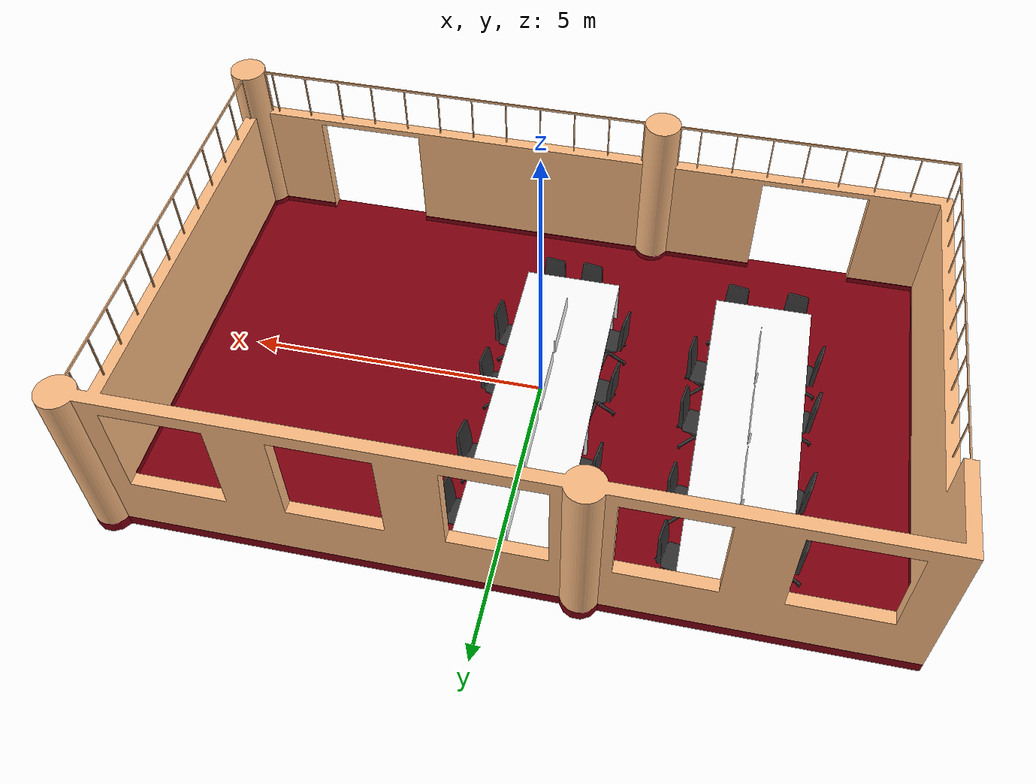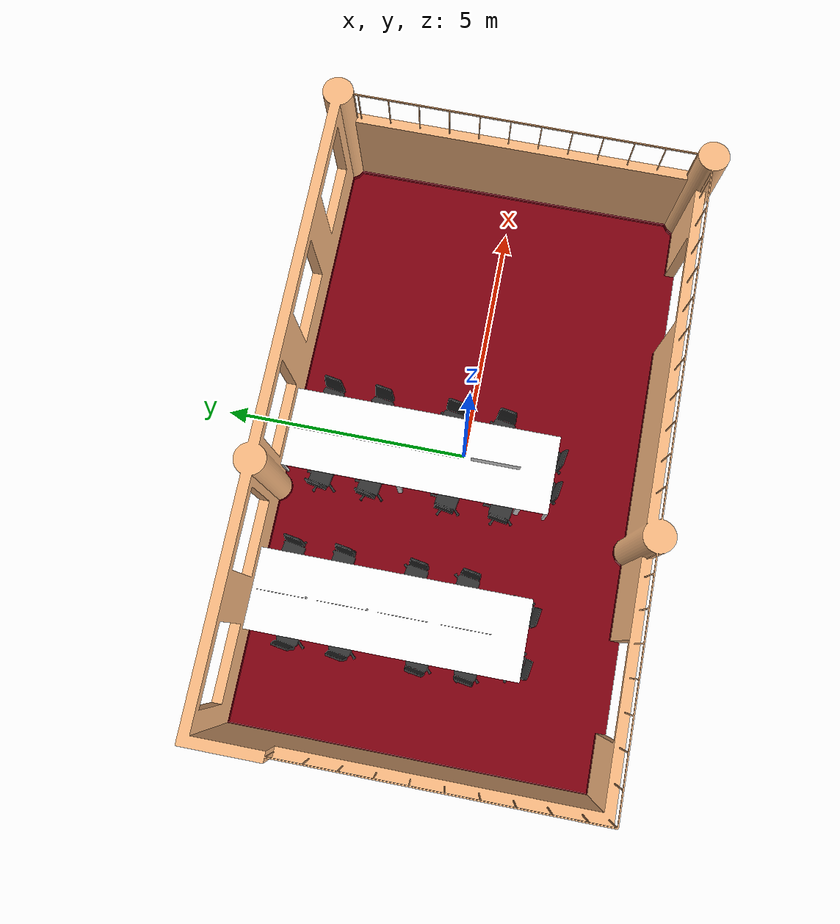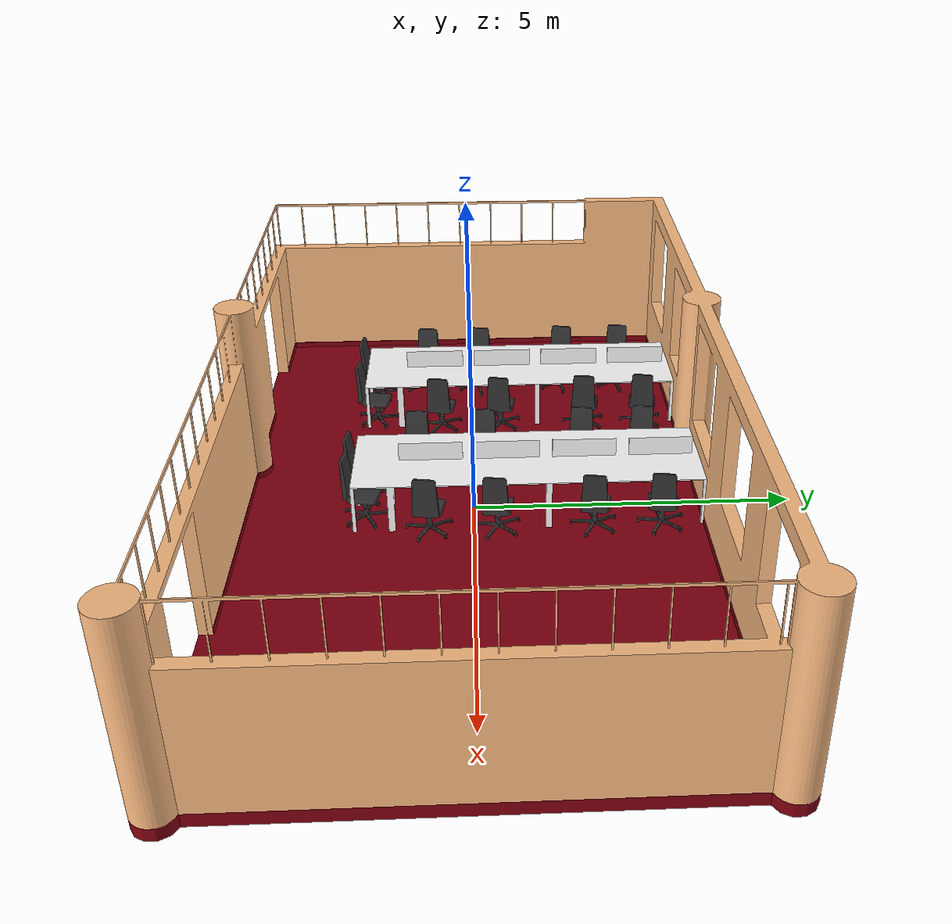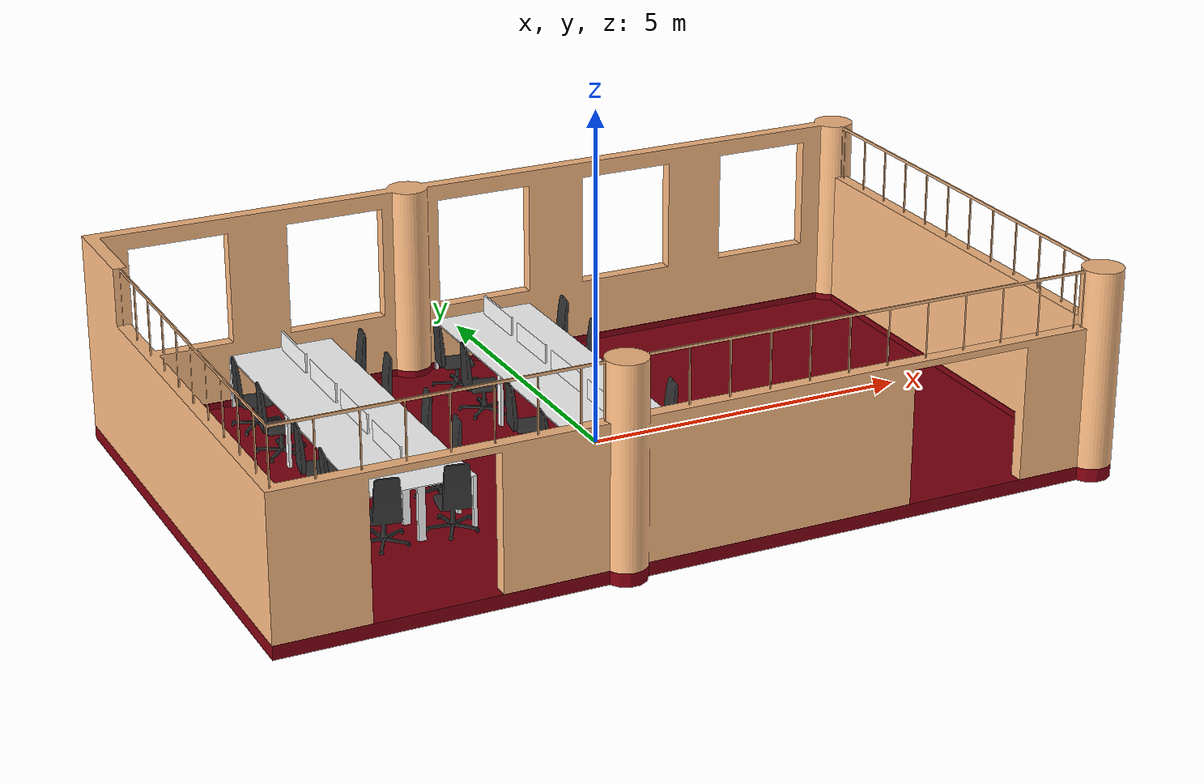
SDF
<sdf version="1.9">
 <world name="marlab">
  <gravity>0 0 -9.8</gravity>
  <magnetic_field>6e-06 2.3e-05 -4.2e-05</magnetic_field>
  <atmosphere type="adiabatic"/>
  <physics type="ode">
   <max_step_size>0.001</max_step_size>
   <real_time_factor>1</real_time_factor>
   <real_time_update_rate>1000</real_time_update_rate>
  </physics>
  <scene><ambient>0.4 0.4 0.4 1</ambient><background>0.7 0.7 0.7 1</background><shadows>true</shadows></scene>
  <light name="sun_light" type="directional">
   <pose>0 0 10 0 0 0</pose>
   <direction>-0.5 0.5 -1</direction>
   <diffuse>1 1 1 1</diffuse>
   <specular>0.2 0.2 0.2 1</specular>
   <attenuation>
    <range>1000</range>
    <constant>0.9</constant>
    <linear>0.01</linear>
    <quadratic>0.001</quadratic>
   </attenuation>
   <cast_shadow>true</cast_shadow>
  </light>
  <include><uri>model://marlab</uri><name>marlab</name></include>
 </world>
</sdf>

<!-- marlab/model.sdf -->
<sdf version="1.7">
  <model name="marlab">
    <!-- make the model dynamic -->
    <static>true</static>

    <link name="world_link">
      <!-- this dummy link holds nothing -->
      <pose>0 0 0 0 0 0</pose>
      <inertial>
        <mass>0.001</mass>
        <inertia>
          <ixx>1e-6</ixx><iyy>1e-6</iyy><izz>1e-6</izz>
        </inertia>
      </inertial>
    </link>

    <link name="floor_link">
      <pose>-6.09 -3.55 0 0 0 0</pose>
      <visual name="floor_visual">
        <geometry>
          <mesh>
            <uri>model://marlab/meshes/floor.stl</uri>
          </mesh>
        </geometry>
        <material>
          <ambient>0.5 0.0 0.06 1</ambient>
          <diffuse>0.5 0.0 0.06 1</diffuse>
        </material>
      </visual>
      <collision name="floor_collision">
        <geometry>
          <mesh><uri>model://marlab/meshes/floor.stl</uri></mesh>
        </geometry>
      </collision>
      <inertial>
        <mass>1.0</mass>
        <inertia>
          <ixx>0.1</ixx><iyy>0.1</iyy><izz>0.1</izz>
        </inertia>
      </inertial>
    </link>

    <link name="walls_link">
      <pose>-6.09 -3.55 0 0 0 0</pose>
      <visual name="walls_visual">
        <geometry>
          <mesh><uri>model://marlab/meshes/walls.stl</uri></mesh>
        </geometry>
        <material>
          <ambient>0.98 0.73 0.51 1</ambient>
          <diffuse>0.98 0.73 0.51 1</diffuse>
        </material>
      </visual>
      <collision name="walls_collision">
        <geometry><mesh><uri>model://marlab/meshes/walls.stl</uri></mesh></geometry>
      </collision>
      <inertial>
        <mass>2.0</mass>
        <inertia>
          <ixx>0.2</ixx><iyy>0.2</iyy><izz>0.2</izz>
        </inertia>
      </inertial>
    </link>

    <link name="tables_link">
      <pose>-6.09 -3.55 0 0 0 0</pose>
      <visual name="tables_visual">
        <geometry>
          <mesh><uri>model://marlab/meshes/tables.stl</uri></mesh>
        </geometry>
        <material>
          <ambient>1.0 1.0 1.0 1</ambient>
          <diffuse>1.0 1.0 1.0 1</diffuse>
        </material>
      </visual>
      <collision name="tables_collision">
        <geometry><mesh><uri>model://marlab/meshes/tables.stl</uri></mesh></geometry>
      </collision>
      <inertial>
        <mass>2.0</mass>
        <inertia>
          <ixx>0.2</ixx><iyy>0.2</iyy><izz>0.2</izz>
        </inertia>
      </inertial>
    </link>

    <link name="chairs_link">
      <pose>0 0 0 0 0 0</pose>
      <inertial>
        <mass>0.1</mass>
        <inertia>
          <ixx>1e-3</ixx><iyy>1e-3</iyy><izz>1e-3</izz>
        </inertia>
      </inertial>

      <!-- Row at x = -2.8 -->
      <visual name="chair_visual_1">
        <pose>-2.8  -2.20  0 0 0 0</pose>
        <geometry><mesh><uri>model://marlab/meshes/chair.stl</uri></mesh></geometry>
        <material><ambient>0.2 0.2 0.2 1</ambient> <diffuse>0.2 0.2 0.2 1</diffuse> </material>
      </visual>
      <collision name="chair_collision_1">
        <pose>-2.8  -2.20  0 0 0 0</pose>
        <geometry><mesh><uri>model://marlab/meshes/chair.stl</uri></mesh></geometry>
      </collision>

      <visual name="chair_visual_2">
        <pose>-2.8  -1.16  0 0 0 0</pose>
        <geometry><mesh><uri>model://marlab/meshes/chair.stl</uri></mesh></geometry>
        <material><ambient>0.2 0.2 0.2 1</ambient> <diffuse>0.2 0.2 0.2 1</diffuse> </material>
      </visual>
      <collision name="chair_collision_2">
        <pose>-2.8  -1.16  0 0 0 0</pose>
        <geometry><mesh><uri>model://marlab/meshes/chair.stl</uri></mesh></geometry>
      </collision>

      <visual name="chair_visual_3">
        <pose>-2.8  -3.69  0 0 0 0</pose>
        <geometry><mesh><uri>model://marlab/meshes/chair.stl</uri></mesh></geometry>
        <material><ambient>0.2 0.2 0.2 1</ambient> <diffuse>0.2 0.2 0.2 1</diffuse> </material>
      </visual>
      <collision name="chair_collision_3">
        <pose>-2.8  -3.69  0 0 0 0</pose>
        <geometry><mesh><uri>model://marlab/meshes/chair.stl</uri></mesh></geometry>
      </collision>

      <visual name="chair_visual_4">
        <pose>-2.8  -4.74  0 0 0 0</pose>
        <geometry><mesh><uri>model://marlab/meshes/chair.stl</uri></mesh></geometry>
        <material><ambient>0.2 0.2 0.2 1</ambient> <diffuse>0.2 0.2 0.2 1</diffuse> </material>
      </visual>
      <collision name="chair_collision_4">
        <pose>-2.8  -4.74  0 0 0 0</pose>
        <geometry><mesh><uri>model://marlab/meshes/chair.stl</uri></mesh></geometry>
      </collision>

      <!-- Row at x = -6.06 -->
      <visual name="chair_visual_5">
        <pose>-6.06 -1.06  0 0 0 0</pose>
        <geometry><mesh><uri>model://marlab/meshes/chair.stl</uri></mesh></geometry>
        <material><ambient>0.2 0.2 0.2 1</ambient> <diffuse>0.2 0.2 0.2 1</diffuse> </material>
      </visual>
      <collision name="chair_collision_5">
        <pose>-6.06 -1.06  0 0 0 0</pose>
        <geometry><mesh><uri>model://marlab/meshes/chair.stl</uri></mesh></geometry>
      </collision>

      <visual name="chair_visual_6">
        <pose>-6.06 -2.08  0 0 0 0</pose>
        <geometry><mesh><uri>model://marlab/meshes/chair.stl</uri></mesh></geometry>
        <material><ambient>0.2 0.2 0.2 1</ambient> <diffuse>0.2 0.2 0.2 1</diffuse> </material>
      </visual>
      <collision name="chair_collision_6">
        <pose>-6.06 -2.08  0 0 0 0</pose>
        <geometry><mesh><uri>model://marlab/meshes/chair.stl</uri></mesh></geometry>
      </collision>

      <visual name="chair_visual_7">
        <pose>-6.06 -3.56  0 0 0 0</pose>
        <geometry><mesh><uri>model://marlab/meshes/chair.stl</uri></mesh></geometry>
        <material><ambient>0.2 0.2 0.2 1</ambient> <diffuse>0.2 0.2 0.2 1</diffuse> </material>
      </visual>
      <collision name="chair_collision_7">
        <pose>-6.06 -3.56  0 0 0 0</pose>
        <geometry><mesh><uri>model://marlab/meshes/chair.stl</uri></mesh></geometry>
      </collision>

      <visual name="chair_visual_8">
        <pose>-6.06 -4.60  0 0 0 0</pose>
        <geometry><mesh><uri>model://marlab/meshes/chair.stl</uri></mesh></geometry>
        <material><ambient>0.2 0.2 0.2 1</ambient> <diffuse>0.2 0.2 0.2 1</diffuse> </material>
      </visual>
      <collision name="chair_collision_8">
        <pose>-6.06 -4.60  0 0 0 0</pose>
        <geometry><mesh><uri>model://marlab/meshes/chair.stl</uri></mesh></geometry>
      </collision>

      <!-- Row at x = -4.4 -->
      <visual name="chair_visual_9">
        <pose>2.4 3.10 0 0 0 3.14159 </pose>
        <geometry><mesh><uri>model://marlab/meshes/chair.stl</uri></mesh></geometry>
        <material><ambient>0.2 0.2 0.2 1</ambient> <diffuse>0.2 0.2 0.2 1</diffuse> </material>
      </visual>
      <collision name="chair_collision_9">
        <pose>2.4  3.10  0 0 0 0</pose>
        <geometry><mesh><uri>model://marlab/meshes/chair.stl</uri></mesh></geometry>
      </collision>

      <visual name="chair_visual_10">
        <pose>2.4  4.20  0 0 0 3.14159</pose>
        <geometry><mesh><uri>model://marlab/meshes/chair.stl</uri></mesh></geometry>
        <material><ambient>0.2 0.2 0.2 1</ambient> <diffuse>0.2 0.2 0.2 1</diffuse> </material>
      </visual>
      <collision name="chair_collision_10">
        <pose>2.4  4.20  0 0 0 0</pose>
        <geometry><mesh><uri>model://marlab/meshes/chair.stl</uri></mesh></geometry>
      </collision>

      <visual name="chair_visual_11">
        <pose>2.4  5.80  0 0 0 3.14159</pose>
        <geometry><mesh><uri>model://marlab/meshes/chair.stl</uri></mesh></geometry>
        <material><ambient>0.2 0.2 0.2 1</ambient> <diffuse>0.2 0.2 0.2 1</diffuse> </material>
      </visual>
      <collision name="chair_collision_11">
        <pose>2.4  5.80  0 0 0 0</pose>
        <geometry><mesh><uri>model://marlab/meshes/chair.stl</uri></mesh></geometry>
      </collision>

      <visual name="chair_visual_12">
        <pose>2.4  6.80  0 0 0 3.14159</pose>
        <geometry><mesh><uri>model://marlab/meshes/chair.stl</uri></mesh></geometry>
        <material><ambient>0.2 0.2 0.2 1</ambient> <diffuse>0.2 0.2 0.2 1</diffuse> </material>
      </visual>
      <collision name="chair_collision_12">
        <pose>2.4  6.80  0 0 0 0</pose>
        <geometry><mesh><uri>model://marlab/meshes/chair.stl</uri></mesh></geometry>
      </collision>

      <!-- Row at x = -0.2 -->
      <visual name="chair_visual_13">
        <pose>-0.8 3.20  0 0 0 3.14159</pose>
        <geometry><mesh><uri>model://marlab/meshes/chair.stl</uri></mesh></geometry>
        <material><ambient>0.2 0.2 0.2 1</ambient> <diffuse>0.2 0.2 0.2 1</diffuse> </material>
      </visual>
      <collision name="chair_collision_13">
        <pose>-0.8 3.20  0 0 0 3.14159</pose>
        <geometry><mesh><uri>model://marlab/meshes/chair.stl</uri></mesh></geometry>
      </collision>

      <visual name="chair_visual_14">
        <pose>-0.8 4.16  0 0 0 3.14159</pose>
        <geometry><mesh><uri>model://marlab/meshes/chair.stl</uri></mesh></geometry>
        <material><ambient>0.2 0.2 0.2 1</ambient> <diffuse>0.2 0.2 0.2 1</diffuse> </material>
      </visual>
      <collision name="chair_collision_14">
        <pose>-0.8 4.16  0 0 0 3.14159</pose>
        <geometry><mesh><uri>model://marlab/meshes/chair.stl</uri></mesh></geometry>
      </collision>

      <visual name="chair_visual_15">
        <pose>-0.8 5.69  0 0 0 3.14159</pose>
        <geometry><mesh><uri>model://marlab/meshes/chair.stl</uri></mesh></geometry>
        <material><ambient>0.2 0.2 0.2 1</ambient> <diffuse>0.2 0.2 0.2 1</diffuse> </material>
      </visual>
      <collision name="chair_collision_15">
        <pose>-0.8 5.69  0 0 0 3.14159</pose>
        <geometry><mesh><uri>model://marlab/meshes/chair.stl</uri></mesh></geometry>
      </collision>

      <visual name="chair_visual_16">
        <pose>-0.8 6.74  0 0 0 3.14159</pose>
        <geometry><mesh><uri>model://marlab/meshes/chair.stl</uri></mesh></geometry>
        <material><ambient>0.2 0.2 0.2 1</ambient> <diffuse>0.2 0.2 0.2 1</diffuse> </material>
      </visual>
      <collision name="chair_collision_16">
        <pose>-0.8 6.74  0 0 0 3.14159</pose>
        <geometry><mesh><uri>model://marlab/meshes/chair.stl</uri></mesh></geometry>
      </collision>

      <!-- Two chairs at y = -5.9 -->
      <visual name="chair_visual_17">
        <pose>-7 1.70  0 0 0 -1.575</pose>
        <geometry><mesh><uri>model://marlab/meshes/chair.stl</uri></mesh></geometry>
        <material><ambient>0.2 0.2 0.2 1</ambient> <diffuse>0.2 0.2 0.2 1</diffuse> </material>
      </visual>
      <collision name="chair_collision_17">
        <pose>-7 1.70  0 0 0 -1.575</pose>
        <geometry><mesh><uri>model://marlab/meshes/chair.stl</uri></mesh></geometry>
      </collision>

      <visual name="chair_visual_18">
        <pose>-8 1.70  0 0 0 -1.575</pose>
        <geometry><mesh><uri>model://marlab/meshes/chair.stl</uri></mesh></geometry>
        <material><ambient>0.2 0.2 0.2 1</ambient> <diffuse>0.2 0.2 0.2 1</diffuse> </material>
      </visual>
      <collision name="chair_collision_18">
        <pose>-8 1.70  0 0 0 -1.575</pose>
        <geometry><mesh><uri>model://marlab/meshes/chair.stl</uri></mesh></geometry>
      </collision>

      <!-- Two chairs at y = -6.0 -->
      <visual name="chair_visual_19">
        <pose>-4.5 1.70  0 0 0 -1.575</pose>
        <geometry><mesh><uri>model://marlab/meshes/chair.stl</uri></mesh></geometry>
        <material><ambient>0.2 0.2 0.2 1</ambient> <diffuse>0.2 0.2 0.2 1</diffuse> </material>
      </visual>
      <collision name="chair_collision_19">
        <pose>-4.5 1.70  0 0 0 -1.575</pose>
        <geometry><mesh><uri>model://marlab/meshes/chair.stl</uri></mesh></geometry>
      </collision>

      <visual name="chair_visual_20">
        <pose>-3.85 1.70   0 0 0 -1.575</pose>
        <geometry><mesh><uri>model://marlab/meshes/chair.stl</uri></mesh></geometry>
        <material><ambient>0.2 0.2 0.2 1</ambient> <diffuse>0.2 0.2 0.2 1</diffuse> </material>
      </visual>
      <collision name="chair_collision_20">
        <pose>-3.85 1.70   0 0 0 -1.575</pose>
        <geometry><mesh><uri>model://marlab/meshes/chair.stl</uri></mesh></geometry>
      </collision>
    </link>

    <joint name="floor_to_world" type="fixed">
      <parent>world_link</parent>
      <child>floor_link</child>
      <pose>0 0 0 0 0 0</pose>
    </joint>
    <joint name="walls_to_floor" type="fixed">
      <parent>floor_link</parent>
      <child>walls_link</child>
      <pose>0 0 0 0 0 0</pose>
    </joint>
    <joint name="tables_to_floor" type="fixed">
      <parent>floor_link</parent>
      <child>tables_link</child>
      <pose>0 0 0 0 0 0</pose>
    </joint>
    <joint name="chairs_to_floor" type="fixed">
      <parent>floor_link</parent>
      <child>chairs_link</child>
      <pose>0 0 0 0 0 0</pose>
    </joint>

  </model>
</sdf>
